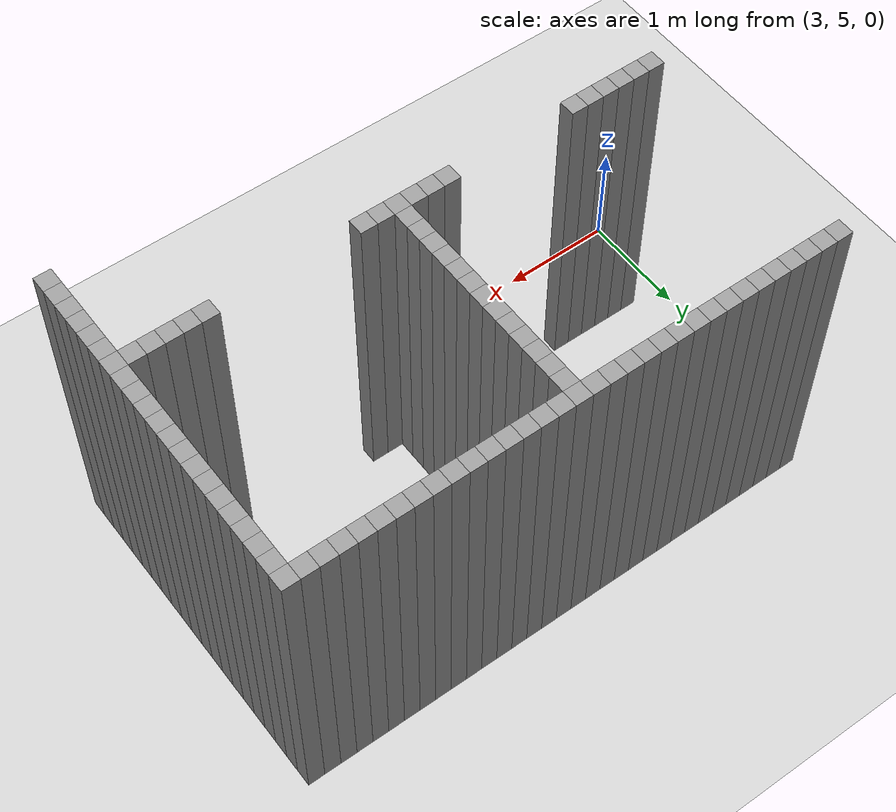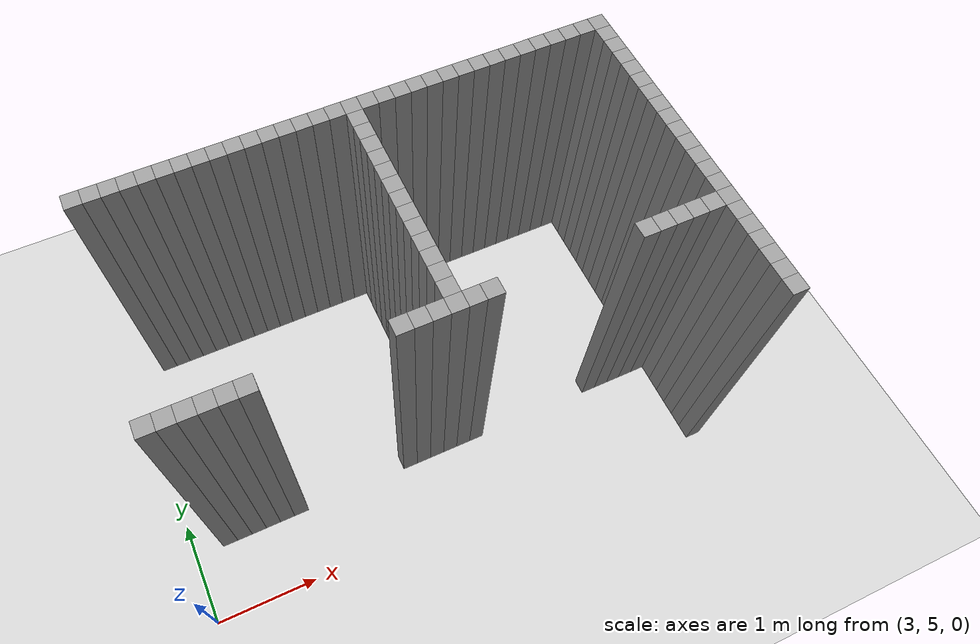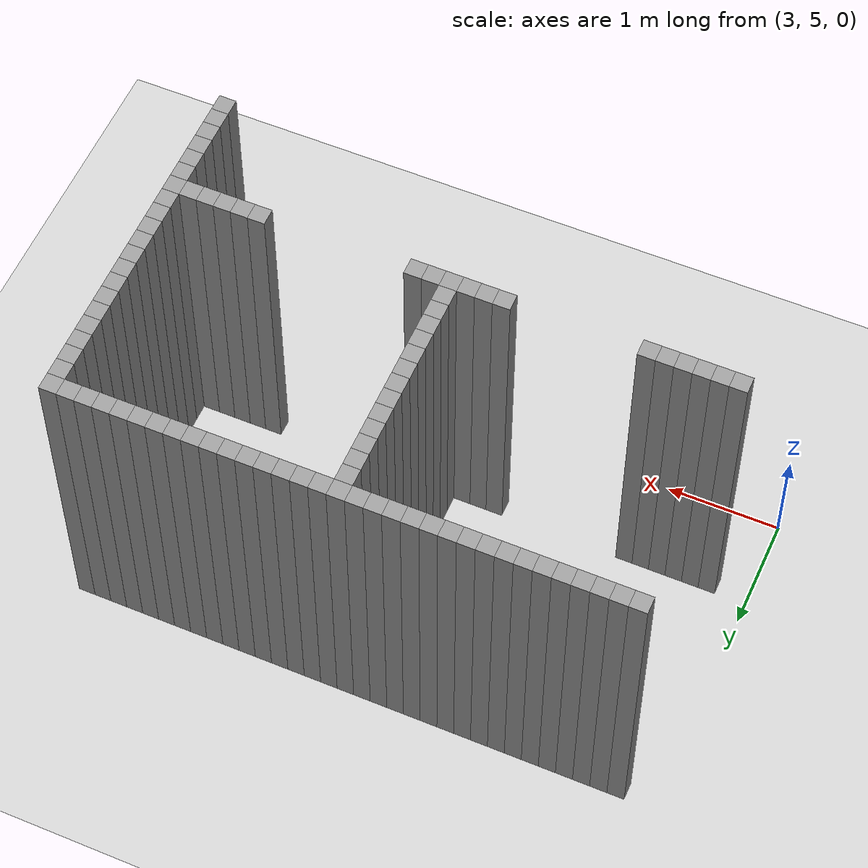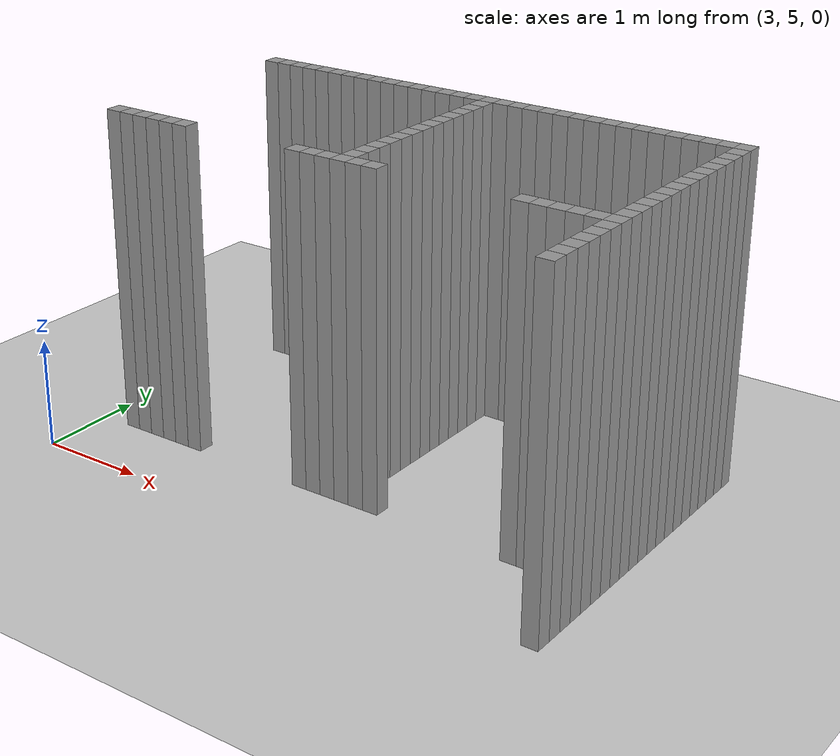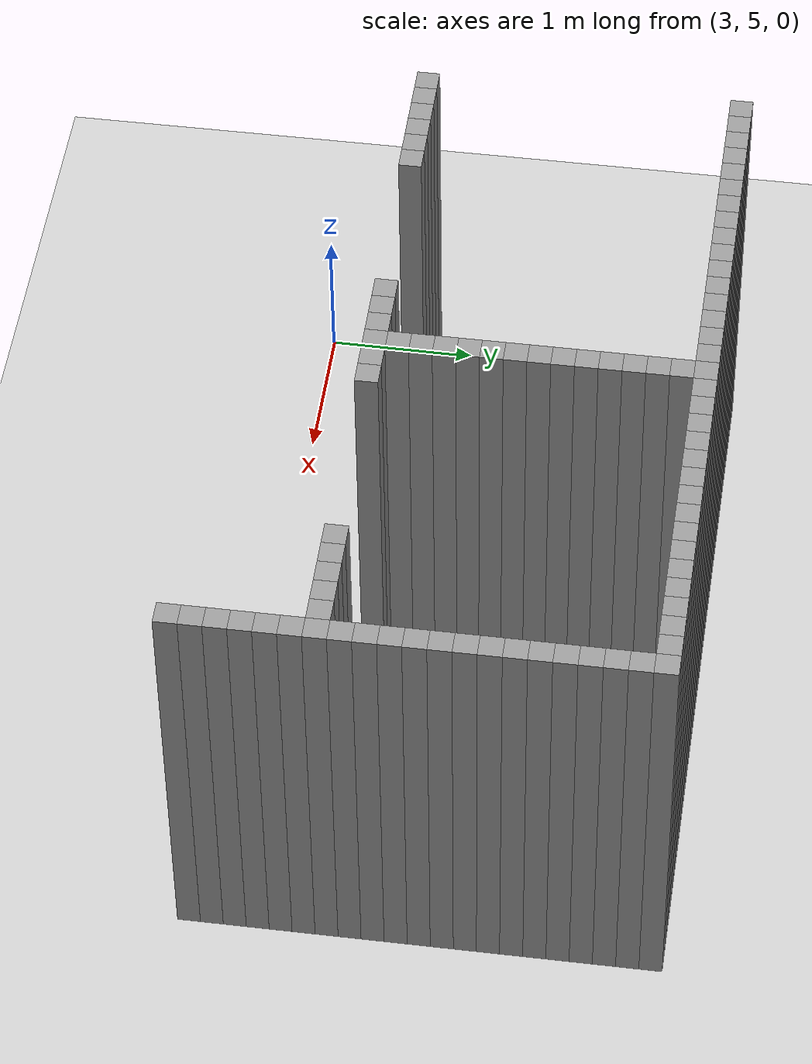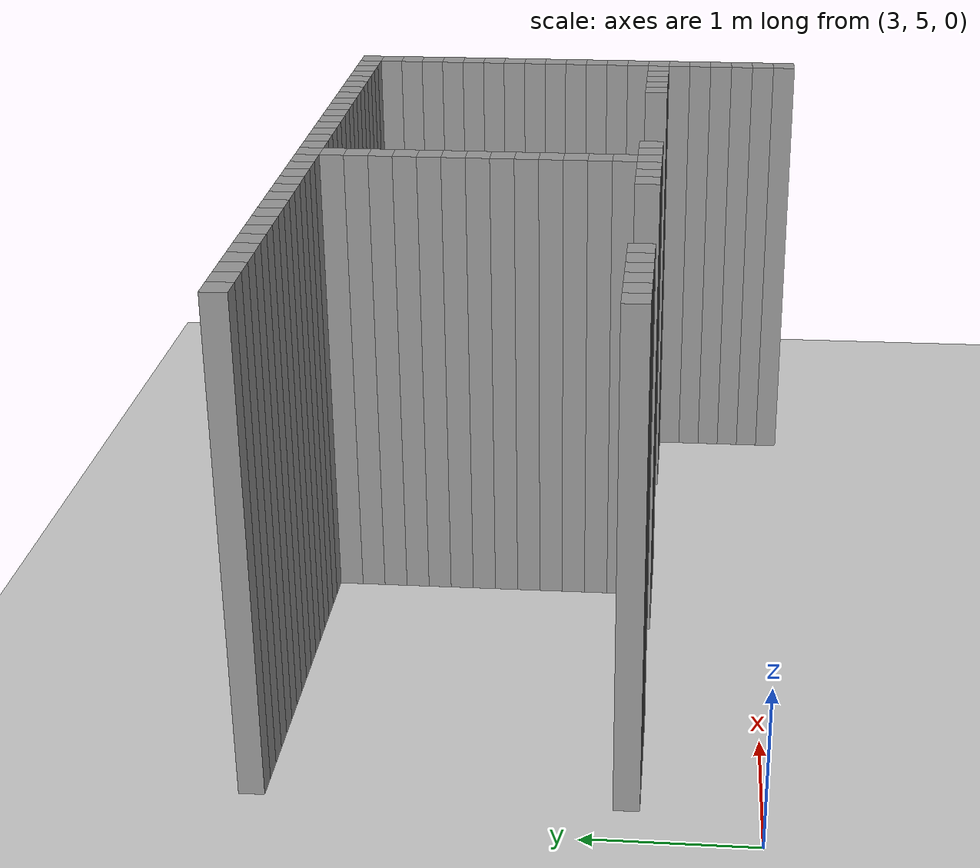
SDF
<sdf version="1.7">
 <world name="default">
  <model name="ground_plane">
   <static>1</static>
   <link name="link">
    <collision name="collision">
     <geometry><plane><normal>0 0 1</normal><size>100 100</size></plane></geometry>
     <surface>
      <contact><collide_bitmask>65535</collide_bitmask></contact>
      <friction><ode><mu>100</mu><mu2>50</mu2></ode></friction>
     </surface>
    </collision>
    <visual name="visual">
     <cast_shadows>0</cast_shadows>
     <geometry><plane><normal>0 0 1</normal><size>100 100</size></plane></geometry>
     <material>
      <script><uri>file://media/materials/scripts/gazebo.material</uri><name>Gazebo/Grey</name></script>
     </material>
    </visual>
   </link>
  </model>
  <model name="image45003">
   <pose>-1 -1 0 0 -0 0</pose>
   <link name="Wall_252">
    <collision name="Wall_252_Collision">
     <geometry><box><size>0.15 0.15 3</size></box></geometry>
     <pose>0 0 1.5 0 -0 0</pose>
    </collision>
    <visual name="Wall_252_Visual">
     <pose>0 0 1.5 0 -0 0</pose>
     <geometry><box><size>0.15 0.15 3</size></box></geometry>
     <material>
      <script><uri>file://media/materials/scripts/gazebo.material</uri><name>Gazebo/Grey</name></script>
      <ambient>1 1 1 1</ambient>
     </material>
     <meta><layer>0</layer></meta>
    </visual>
    <pose>4.35 6.75 0 0 -0 0</pose>
   </link>
   <link name="Wall_253">
    <collision name="Wall_253_Collision">
     <geometry><box><size>0.15 0.15 3</size></box></geometry>
     <pose>0 0 1.5 0 -0 0</pose>
    </collision>
    <visual name="Wall_253_Visual">
     <pose>0 0 1.5 0 -0 0</pose>
     <geometry><box><size>0.15 0.15 3</size></box></geometry>
     <material>
      <script><uri>file://media/materials/scripts/gazebo.material</uri><name>Gazebo/Grey</name></script>
      <ambient>1 1 1 1</ambient>
     </material>
     <meta><layer>0</layer></meta>
    </visual>
    <pose>4.35 8.85 0 0 -0 0</pose>
   </link>
   <link name="Wall_258">
    <collision name="Wall_258_Collision">
     <geometry><box><size>0.15 0.15 3</size></box></geometry>
     <pose>0 0 1.5 0 -0 0</pose>
    </collision>
    <visual name="Wall_258_Visual">
     <pose>0 0 1.5 0 -0 0</pose>
     <geometry><box><size>0.15 0.15 3</size></box></geometry>
     <material>
      <script><uri>file://media/materials/scripts/gazebo.material</uri><name>Gazebo/Grey</name></script>
      <ambient>1 1 1 1</ambient>
     </material>
     <meta><layer>0</layer></meta>
    </visual>
    <pose>4.5 6.75 0 0 -0 0</pose>
   </link>
   <link name="Wall_259">
    <collision name="Wall_259_Collision">
     <geometry><box><size>0.15 0.15 3</size></box></geometry>
     <pose>0 0 1.5 0 -0 0</pose>
    </collision>
    <visual name="Wall_259_Visual">
     <pose>0 0 1.5 0 -0 0</pose>
     <geometry><box><size>0.15 0.15 3</size></box></geometry>
     <material>
      <script><uri>file://media/materials/scripts/gazebo.material</uri><name>Gazebo/Grey</name></script>
      <ambient>1 1 1 1</ambient>
     </material>
     <meta><layer>0</layer></meta>
    </visual>
    <pose>4.5 8.85 0 0 -0 0</pose>
   </link>
   <link name="Wall_264">
    <collision name="Wall_264_Collision">
     <geometry><box><size>0.15 0.15 3</size></box></geometry>
     <pose>0 0 1.5 0 -0 0</pose>
    </collision>
    <visual name="Wall_264_Visual">
     <pose>0 0 1.5 0 -0 0</pose>
     <geometry><box><size>0.15 0.15 3</size></box></geometry>
     <material>
      <script><uri>file://media/materials/scripts/gazebo.material</uri><name>Gazebo/Grey</name></script>
      <ambient>1 1 1 1</ambient>
     </material>
     <meta><layer>0</layer></meta>
    </visual>
    <pose>4.6499999999999995 6.75 0 0 -0 0</pose>
   </link>
   <link name="Wall_265">
    <collision name="Wall_265_Collision">
     <geometry><box><size>0.15 0.15 3</size></box></geometry>
     <pose>0 0 1.5 0 -0 0</pose>
    </collision>
    <visual name="Wall_265_Visual">
     <pose>0 0 1.5 0 -0 0</pose>
     <geometry><box><size>0.15 0.15 3</size></box></geometry>
     <material>
      <script><uri>file://media/materials/scripts/gazebo.material</uri><name>Gazebo/Grey</name></script>
      <ambient>1 1 1 1</ambient>
     </material>
     <meta><layer>0</layer></meta>
    </visual>
    <pose>4.6499999999999995 8.85 0 0 -0 0</pose>
   </link>
   <link name="Wall_269">
    <collision name="Wall_269_Collision">
     <geometry><box><size>0.15 0.15 3</size></box></geometry>
     <pose>0 0 1.5 0 -0 0</pose>
    </collision>
    <visual name="Wall_269_Visual">
     <pose>0 0 1.5 0 -0 0</pose>
     <geometry><box><size>0.15 0.15 3</size></box></geometry>
     <material>
      <script><uri>file://media/materials/scripts/gazebo.material</uri><name>Gazebo/Grey</name></script>
      <ambient>1 1 1 1</ambient>
     </material>
     <meta><layer>0</layer></meta>
    </visual>
    <pose>4.8 6.75 0 0 -0 0</pose>
   </link>
   <link name="Wall_270">
    <collision name="Wall_270_Collision">
     <geometry><box><size>0.15 0.15 3</size></box></geometry>
     <pose>0 0 1.5 0 -0 0</pose>
    </collision>
    <visual name="Wall_270_Visual">
     <pose>0 0 1.5 0 -0 0</pose>
     <geometry><box><size>0.15 0.15 3</size></box></geometry>
     <material>
      <script><uri>file://media/materials/scripts/gazebo.material</uri><name>Gazebo/Grey</name></script>
      <ambient>1 1 1 1</ambient>
     </material>
     <meta><layer>0</layer></meta>
    </visual>
    <pose>4.8 8.85 0 0 -0 0</pose>
   </link>
   <link name="Wall_274">
    <collision name="Wall_274_Collision">
     <geometry><box><size>0.15 0.15 3</size></box></geometry>
     <pose>0 0 1.5 0 -0 0</pose>
    </collision>
    <visual name="Wall_274_Visual">
     <pose>0 0 1.5 0 -0 0</pose>
     <geometry><box><size>0.15 0.15 3</size></box></geometry>
     <material>
      <script><uri>file://media/materials/scripts/gazebo.material</uri><name>Gazebo/Grey</name></script>
      <ambient>1 1 1 1</ambient>
     </material>
     <meta><layer>0</layer></meta>
    </visual>
    <pose>4.95 6.75 0 0 -0 0</pose>
   </link>
   <link name="Wall_275">
    <collision name="Wall_275_Collision">
     <geometry><box><size>0.15 0.15 3</size></box></geometry>
     <pose>0 0 1.5 0 -0 0</pose>
    </collision>
    <visual name="Wall_275_Visual">
     <pose>0 0 1.5 0 -0 0</pose>
     <geometry><box><size>0.15 0.15 3</size></box></geometry>
     <material>
      <script><uri>file://media/materials/scripts/gazebo.material</uri><name>Gazebo/Grey</name></script>
      <ambient>1 1 1 1</ambient>
     </material>
     <meta><layer>0</layer></meta>
    </visual>
    <pose>4.95 8.85 0 0 -0 0</pose>
   </link>
   <link name="Wall_279">
    <collision name="Wall_279_Collision">
     <geometry><box><size>0.15 0.15 3</size></box></geometry>
     <pose>0 0 1.5 0 -0 0</pose>
    </collision>
    <visual name="Wall_279_Visual">
     <pose>0 0 1.5 0 -0 0</pose>
     <geometry><box><size>0.15 0.15 3</size></box></geometry>
     <material>
      <script><uri>file://media/materials/scripts/gazebo.material</uri><name>Gazebo/Grey</name></script>
      <ambient>1 1 1 1</ambient>
     </material>
     <meta><layer>0</layer></meta>
    </visual>
    <pose>5.1 6.75 0 0 -0 0</pose>
   </link>
   <link name="Wall_280">
    <collision name="Wall_280_Collision">
     <geometry><box><size>0.15 0.15 3</size></box></geometry>
     <pose>0 0 1.5 0 -0 0</pose>
    </collision>
    <visual name="Wall_280_Visual">
     <pose>0 0 1.5 0 -0 0</pose>
     <geometry><box><size>0.15 0.15 3</size></box></geometry>
     <material>
      <script><uri>file://media/materials/scripts/gazebo.material</uri><name>Gazebo/Grey</name></script>
      <ambient>1 1 1 1</ambient>
     </material>
     <meta><layer>0</layer></meta>
    </visual>
    <pose>5.1 8.85 0 0 -0 0</pose>
   </link>
   <link name="Wall_283">
    <collision name="Wall_283_Collision">
     <geometry><box><size>0.15 0.15 3</size></box></geometry>
     <pose>0 0 1.5 0 -0 0</pose>
    </collision>
    <visual name="Wall_283_Visual">
     <pose>0 0 1.5 0 -0 0</pose>
     <geometry><box><size>0.15 0.15 3</size></box></geometry>
     <material>
      <script><uri>file://media/materials/scripts/gazebo.material</uri><name>Gazebo/Grey</name></script>
      <ambient>1 1 1 1</ambient>
     </material>
     <meta><layer>0</layer></meta>
    </visual>
    <pose>5.25 8.85 0 0 -0 0</pose>
   </link>
   <link name="Wall_286">
    <collision name="Wall_286_Collision">
     <geometry><box><size>0.15 0.15 3</size></box></geometry>
     <pose>0 0 1.5 0 -0 0</pose>
    </collision>
    <visual name="Wall_286_Visual">
     <pose>0 0 1.5 0 -0 0</pose>
     <geometry><box><size>0.15 0.15 3</size></box></geometry>
     <material>
      <script><uri>file://media/materials/scripts/gazebo.material</uri><name>Gazebo/Grey</name></script>
      <ambient>1 1 1 1</ambient>
     </material>
     <meta><layer>0</layer></meta>
    </visual>
    <pose>5.3999999999999995 8.85 0 0 -0 0</pose>
   </link>
   <link name="Wall_289">
    <collision name="Wall_289_Collision">
     <geometry><box><size>0.15 0.15 3</size></box></geometry>
     <pose>0 0 1.5 0 -0 0</pose>
    </collision>
    <visual name="Wall_289_Visual">
     <pose>0 0 1.5 0 -0 0</pose>
     <geometry><box><size>0.15 0.15 3</size></box></geometry>
     <material>
      <script><uri>file://media/materials/scripts/gazebo.material</uri><name>Gazebo/Grey</name></script>
      <ambient>1 1 1 1</ambient>
     </material>
     <meta><layer>0</layer></meta>
    </visual>
    <pose>5.55 8.85 0 0 -0 0</pose>
   </link>
   <link name="Wall_293">
    <collision name="Wall_293_Collision">
     <geometry><box><size>0.15 0.15 3</size></box></geometry>
     <pose>0 0 1.5 0 -0 0</pose>
    </collision>
    <visual name="Wall_293_Visual">
     <pose>0 0 1.5 0 -0 0</pose>
     <geometry><box><size>0.15 0.15 3</size></box></geometry>
     <material>
      <script><uri>file://media/materials/scripts/gazebo.material</uri><name>Gazebo/Grey</name></script>
      <ambient>1 1 1 1</ambient>
     </material>
     <meta><layer>0</layer></meta>
    </visual>
    <pose>5.7 8.85 0 0 -0 0</pose>
   </link>
   <link name="Wall_297">
    <collision name="Wall_297_Collision">
     <geometry><box><size>0.15 0.15 3</size></box></geometry>
     <pose>0 0 1.5 0 -0 0</pose>
    </collision>
    <visual name="Wall_297_Visual">
     <pose>0 0 1.5 0 -0 0</pose>
     <geometry><box><size>0.15 0.15 3</size></box></geometry>
     <material>
      <script><uri>file://media/materials/scripts/gazebo.material</uri><name>Gazebo/Grey</name></script>
      <ambient>1 1 1 1</ambient>
     </material>
     <meta><layer>0</layer></meta>
    </visual>
    <pose>5.85 8.85 0 0 -0 0</pose>
   </link>
   <link name="Wall_301">
    <collision name="Wall_301_Collision">
     <geometry><box><size>0.15 0.15 3</size></box></geometry>
     <pose>0 0 1.5 0 -0 0</pose>
    </collision>
    <visual name="Wall_301_Visual">
     <pose>0 0 1.5 0 -0 0</pose>
     <geometry><box><size>0.15 0.15 3</size></box></geometry>
     <material>
      <script><uri>file://media/materials/scripts/gazebo.material</uri><name>Gazebo/Grey</name></script>
      <ambient>1 1 1 1</ambient>
     </material>
     <meta><layer>0</layer></meta>
    </visual>
    <pose>6.0 8.85 0 0 -0 0</pose>
   </link>
   <link name="Wall_305">
    <collision name="Wall_305_Collision">
     <geometry><box><size>0.15 0.15 3</size></box></geometry>
     <pose>0 0 1.5 0 -0 0</pose>
    </collision>
    <visual name="Wall_305_Visual">
     <pose>0 0 1.5 0 -0 0</pose>
     <geometry><box><size>0.15 0.15 3</size></box></geometry>
     <material>
      <script><uri>file://media/materials/scripts/gazebo.material</uri><name>Gazebo/Grey</name></script>
      <ambient>1 1 1 1</ambient>
     </material>
     <meta><layer>0</layer></meta>
    </visual>
    <pose>6.1499999999999995 8.85 0 0 -0 0</pose>
   </link>
   <link name="Wall_325">
    <collision name="Wall_325_Collision">
     <geometry><box><size>0.15 0.15 3</size></box></geometry>
     <pose>0 0 1.5 0 -0 0</pose>
    </collision>
    <visual name="Wall_325_Visual">
     <pose>0 0 1.5 0 -0 0</pose>
     <geometry><box><size>0.15 0.15 3</size></box></geometry>
     <material>
      <script><uri>file://media/materials/scripts/gazebo.material</uri><name>Gazebo/Grey</name></script>
      <ambient>1 1 1 1</ambient>
     </material>
     <meta><layer>0</layer></meta>
    </visual>
    <pose>6.3 6.75 0 0 -0 0</pose>
   </link>
   <link name="Wall_326">
    <collision name="Wall_326_Collision">
     <geometry><box><size>0.15 0.15 3</size></box></geometry>
     <pose>0 0 1.5 0 -0 0</pose>
    </collision>
    <visual name="Wall_326_Visual">
     <pose>0 0 1.5 0 -0 0</pose>
     <geometry><box><size>0.15 0.15 3</size></box></geometry>
     <material>
      <script><uri>file://media/materials/scripts/gazebo.material</uri><name>Gazebo/Grey</name></script>
      <ambient>1 1 1 1</ambient>
     </material>
     <meta><layer>0</layer></meta>
    </visual>
    <pose>6.3 8.85 0 0 -0 0</pose>
   </link>
   <link name="Wall_329">
    <collision name="Wall_329_Collision">
     <geometry><box><size>0.15 0.15 3</size></box></geometry>
     <pose>0 0 1.5 0 -0 0</pose>
    </collision>
    <visual name="Wall_329_Visual">
     <pose>0 0 1.5 0 -0 0</pose>
     <geometry><box><size>0.15 0.15 3</size></box></geometry>
     <material>
      <script><uri>file://media/materials/scripts/gazebo.material</uri><name>Gazebo/Grey</name></script>
      <ambient>1 1 1 1</ambient>
     </material>
     <meta><layer>0</layer></meta>
    </visual>
    <pose>6.45 6.75 0 0 -0 0</pose>
   </link>
   <link name="Wall_330">
    <collision name="Wall_330_Collision">
     <geometry><box><size>0.15 0.15 3</size></box></geometry>
     <pose>0 0 1.5 0 -0 0</pose>
    </collision>
    <visual name="Wall_330_Visual">
     <pose>0 0 1.5 0 -0 0</pose>
     <geometry><box><size>0.15 0.15 3</size></box></geometry>
     <material>
      <script><uri>file://media/materials/scripts/gazebo.material</uri><name>Gazebo/Grey</name></script>
      <ambient>1 1 1 1</ambient>
     </material>
     <meta><layer>0</layer></meta>
    </visual>
    <pose>6.45 8.85 0 0 -0 0</pose>
   </link>
   <link name="Wall_333">
    <collision name="Wall_333_Collision">
     <geometry><box><size>0.15 0.15 3</size></box></geometry>
     <pose>0 0 1.5 0 -0 0</pose>
    </collision>
    <visual name="Wall_333_Visual">
     <pose>0 0 1.5 0 -0 0</pose>
     <geometry><box><size>0.15 0.15 3</size></box></geometry>
     <material>
      <script><uri>file://media/materials/scripts/gazebo.material</uri><name>Gazebo/Grey</name></script>
      <ambient>1 1 1 1</ambient>
     </material>
     <meta><layer>0</layer></meta>
    </visual>
    <pose>6.6 6.75 0 0 -0 0</pose>
   </link>
   <link name="Wall_334">
    <collision name="Wall_334_Collision">
     <geometry><box><size>0.15 0.15 3</size></box></geometry>
     <pose>0 0 1.5 0 -0 0</pose>
    </collision>
    <visual name="Wall_334_Visual">
     <pose>0 0 1.5 0 -0 0</pose>
     <geometry><box><size>0.15 0.15 3</size></box></geometry>
     <material>
      <script><uri>file://media/materials/scripts/gazebo.material</uri><name>Gazebo/Grey</name></script>
      <ambient>1 1 1 1</ambient>
     </material>
     <meta><layer>0</layer></meta>
    </visual>
    <pose>6.6 8.85 0 0 -0 0</pose>
   </link>
   <link name="Wall_345">
    <collision name="Wall_345_Collision">
     <geometry><box><size>0.15 0.15 3</size></box></geometry>
     <pose>0 0 1.5 0 -0 0</pose>
    </collision>
    <visual name="Wall_345_Visual">
     <pose>0 0 1.5 0 -0 0</pose>
     <geometry><box><size>0.15 0.15 3</size></box></geometry>
     <material>
      <script><uri>file://media/materials/scripts/gazebo.material</uri><name>Gazebo/Grey</name></script>
      <ambient>1 1 1 1</ambient>
     </material>
     <meta><layer>0</layer></meta>
    </visual>
    <pose>6.75 6.75 0 0 -0 0</pose>
   </link>
   <link name="Wall_346">
    <collision name="Wall_346_Collision">
     <geometry><box><size>0.15 0.15 3</size></box></geometry>
     <pose>0 0 1.5 0 -0 0</pose>
    </collision>
    <visual name="Wall_346_Visual">
     <pose>0 0 1.5 0 -0 0</pose>
     <geometry><box><size>0.15 0.15 3</size></box></geometry>
     <material>
      <script><uri>file://media/materials/scripts/gazebo.material</uri><name>Gazebo/Grey</name></script>
      <ambient>1 1 1 1</ambient>
     </material>
     <meta><layer>0</layer></meta>
    </visual>
    <pose>6.75 6.8999999999999995 0 0 -0 0</pose>
   </link>
   <link name="Wall_347">
    <collision name="Wall_347_Collision">
     <geometry><box><size>0.15 0.15 3</size></box></geometry>
     <pose>0 0 1.5 0 -0 0</pose>
    </collision>
    <visual name="Wall_347_Visual">
     <pose>0 0 1.5 0 -0 0</pose>
     <geometry><box><size>0.15 0.15 3</size></box></geometry>
     <material>
      <script><uri>file://media/materials/scripts/gazebo.material</uri><name>Gazebo/Grey</name></script>
      <ambient>1 1 1 1</ambient>
     </material>
     <meta><layer>0</layer></meta>
    </visual>
    <pose>6.75 7.05 0 0 -0 0</pose>
   </link>
   <link name="Wall_348">
    <collision name="Wall_348_Collision">
     <geometry><box><size>0.15 0.15 3</size></box></geometry>
     <pose>0 0 1.5 0 -0 0</pose>
    </collision>
    <visual name="Wall_348_Visual">
     <pose>0 0 1.5 0 -0 0</pose>
     <geometry><box><size>0.15 0.15 3</size></box></geometry>
     <material>
      <script><uri>file://media/materials/scripts/gazebo.material</uri><name>Gazebo/Grey</name></script>
      <ambient>1 1 1 1</ambient>
     </material>
     <meta><layer>0</layer></meta>
    </visual>
    <pose>6.75 7.199999999999999 0 0 -0 0</pose>
   </link>
   <link name="Wall_349">
    <collision name="Wall_349_Collision">
     <geometry><box><size>0.15 0.15 3</size></box></geometry>
     <pose>0 0 1.5 0 -0 0</pose>
    </collision>
    <visual name="Wall_349_Visual">
     <pose>0 0 1.5 0 -0 0</pose>
     <geometry><box><size>0.15 0.15 3</size></box></geometry>
     <material>
      <script><uri>file://media/materials/scripts/gazebo.material</uri><name>Gazebo/Grey</name></script>
      <ambient>1 1 1 1</ambient>
     </material>
     <meta><layer>0</layer></meta>
    </visual>
    <pose>6.75 7.35 0 0 -0 0</pose>
   </link>
   <link name="Wall_350">
    <collision name="Wall_350_Collision">
     <geometry><box><size>0.15 0.15 3</size></box></geometry>
     <pose>0 0 1.5 0 -0 0</pose>
    </collision>
    <visual name="Wall_350_Visual">
     <pose>0 0 1.5 0 -0 0</pose>
     <geometry><box><size>0.15 0.15 3</size></box></geometry>
     <material>
      <script><uri>file://media/materials/scripts/gazebo.material</uri><name>Gazebo/Grey</name></script>
      <ambient>1 1 1 1</ambient>
     </material>
     <meta><layer>0</layer></meta>
    </visual>
    <pose>6.75 7.5 0 0 -0 0</pose>
   </link>
   <link name="Wall_351">
    <collision name="Wall_351_Collision">
     <geometry><box><size>0.15 0.15 3</size></box></geometry>
     <pose>0 0 1.5 0 -0 0</pose>
    </collision>
    <visual name="Wall_351_Visual">
     <pose>0 0 1.5 0 -0 0</pose>
     <geometry><box><size>0.15 0.15 3</size></box></geometry>
     <material>
      <script><uri>file://media/materials/scripts/gazebo.material</uri><name>Gazebo/Grey</name></script>
      <ambient>1 1 1 1</ambient>
     </material>
     <meta><layer>0</layer></meta>
    </visual>
    <pose>6.75 7.6499999999999995 0 0 -0 0</pose>
   </link>
   <link name="Wall_352">
    <collision name="Wall_352_Collision">
     <geometry><box><size>0.15 0.15 3</size></box></geometry>
     <pose>0 0 1.5 0 -0 0</pose>
    </collision>
    <visual name="Wall_352_Visual">
     <pose>0 0 1.5 0 -0 0</pose>
     <geometry><box><size>0.15 0.15 3</size></box></geometry>
     <material>
      <script><uri>file://media/materials/scripts/gazebo.material</uri><name>Gazebo/Grey</name></script>
      <ambient>1 1 1 1</ambient>
     </material>
     <meta><layer>0</layer></meta>
    </visual>
    <pose>6.75 7.8 0 0 -0 0</pose>
   </link>
   <link name="Wall_353">
    <collision name="Wall_353_Collision">
     <geometry><box><size>0.15 0.15 3</size></box></geometry>
     <pose>0 0 1.5 0 -0 0</pose>
    </collision>
    <visual name="Wall_353_Visual">
     <pose>0 0 1.5 0 -0 0</pose>
     <geometry><box><size>0.15 0.15 3</size></box></geometry>
     <material>
      <script><uri>file://media/materials/scripts/gazebo.material</uri><name>Gazebo/Grey</name></script>
      <ambient>1 1 1 1</ambient>
     </material>
     <meta><layer>0</layer></meta>
    </visual>
    <pose>6.75 7.949999999999999 0 0 -0 0</pose>
   </link>
   <link name="Wall_354">
    <collision name="Wall_354_Collision">
     <geometry><box><size>0.15 0.15 3</size></box></geometry>
     <pose>0 0 1.5 0 -0 0</pose>
    </collision>
    <visual name="Wall_354_Visual">
     <pose>0 0 1.5 0 -0 0</pose>
     <geometry><box><size>0.15 0.15 3</size></box></geometry>
     <material>
      <script><uri>file://media/materials/scripts/gazebo.material</uri><name>Gazebo/Grey</name></script>
      <ambient>1 1 1 1</ambient>
     </material>
     <meta><layer>0</layer></meta>
    </visual>
    <pose>6.75 8.1 0 0 -0 0</pose>
   </link>
   <link name="Wall_355">
    <collision name="Wall_355_Collision">
     <geometry><box><size>0.15 0.15 3</size></box></geometry>
     <pose>0 0 1.5 0 -0 0</pose>
    </collision>
    <visual name="Wall_355_Visual">
     <pose>0 0 1.5 0 -0 0</pose>
     <geometry><box><size>0.15 0.15 3</size></box></geometry>
     <material>
      <script><uri>file://media/materials/scripts/gazebo.material</uri><name>Gazebo/Grey</name></script>
      <ambient>1 1 1 1</ambient>
     </material>
     <meta><layer>0</layer></meta>
    </visual>
    <pose>6.75 8.25 0 0 -0 0</pose>
   </link>
   <link name="Wall_356">
    <collision name="Wall_356_Collision">
     <geometry><box><size>0.15 0.15 3</size></box></geometry>
     <pose>0 0 1.5 0 -0 0</pose>
    </collision>
    <visual name="Wall_356_Visual">
     <pose>0 0 1.5 0 -0 0</pose>
     <geometry><box><size>0.15 0.15 3</size></box></geometry>
     <material>
      <script><uri>file://media/materials/scripts/gazebo.material</uri><name>Gazebo/Grey</name></script>
      <ambient>1 1 1 1</ambient>
     </material>
     <meta><layer>0</layer></meta>
    </visual>
    <pose>6.75 8.4 0 0 -0 0</pose>
   </link>
   <link name="Wall_357">
    <collision name="Wall_357_Collision">
     <geometry><box><size>0.15 0.15 3</size></box></geometry>
     <pose>0 0 1.5 0 -0 0</pose>
    </collision>
    <visual name="Wall_357_Visual">
     <pose>0 0 1.5 0 -0 0</pose>
     <geometry><box><size>0.15 0.15 3</size></box></geometry>
     <material>
      <script><uri>file://media/materials/scripts/gazebo.material</uri><name>Gazebo/Grey</name></script>
      <ambient>1 1 1 1</ambient>
     </material>
     <meta><layer>0</layer></meta>
    </visual>
    <pose>6.75 8.549999999999999 0 0 -0 0</pose>
   </link>
   <link name="Wall_358">
    <collision name="Wall_358_Collision">
     <geometry><box><size>0.15 0.15 3</size></box></geometry>
     <pose>0 0 1.5 0 -0 0</pose>
    </collision>
    <visual name="Wall_358_Visual">
     <pose>0 0 1.5 0 -0 0</pose>
     <geometry><box><size>0.15 0.15 3</size></box></geometry>
     <material>
      <script><uri>file://media/materials/scripts/gazebo.material</uri><name>Gazebo/Grey</name></script>
      <ambient>1 1 1 1</ambient>
     </material>
     <meta><layer>0</layer></meta>
    </visual>
    <pose>6.75 8.7 0 0 -0 0</pose>
   </link>
   <link name="Wall_359">
    <collision name="Wall_359_Collision">
     <geometry><box><size>0.15 0.15 3</size></box></geometry>
     <pose>0 0 1.5 0 -0 0</pose>
    </collision>
    <visual name="Wall_359_Visual">
     <pose>0 0 1.5 0 -0 0</pose>
     <geometry><box><size>0.15 0.15 3</size></box></geometry>
     <material>
      <script><uri>file://media/materials/scripts/gazebo.material</uri><name>Gazebo/Grey</name></script>
      <ambient>1 1 1 1</ambient>
     </material>
     <meta><layer>0</layer></meta>
    </visual>
    <pose>6.75 8.85 0 0 -0 0</pose>
   </link>
   <link name="Wall_362">
    <collision name="Wall_362_Collision">
     <geometry><box><size>0.15 0.15 3</size></box></geometry>
     <pose>0 0 1.5 0 -0 0</pose>
    </collision>
    <visual name="Wall_362_Visual">
     <pose>0 0 1.5 0 -0 0</pose>
     <geometry><box><size>0.15 0.15 3</size></box></geometry>
     <material>
      <script><uri>file://media/materials/scripts/gazebo.material</uri><name>Gazebo/Grey</name></script>
      <ambient>1 1 1 1</ambient>
     </material>
     <meta><layer>0</layer></meta>
    </visual>
    <pose>6.8999999999999995 6.75 0 0 -0 0</pose>
   </link>
   <link name="Wall_363">
    <collision name="Wall_363_Collision">
     <geometry><box><size>0.15 0.15 3</size></box></geometry>
     <pose>0 0 1.5 0 -0 0</pose>
    </collision>
    <visual name="Wall_363_Visual">
     <pose>0 0 1.5 0 -0 0</pose>
     <geometry><box><size>0.15 0.15 3</size></box></geometry>
     <material>
      <script><uri>file://media/materials/scripts/gazebo.material</uri><name>Gazebo/Grey</name></script>
      <ambient>1 1 1 1</ambient>
     </material>
     <meta><layer>0</layer></meta>
    </visual>
    <pose>6.8999999999999995 8.85 0 0 -0 0</pose>
   </link>
   <link name="Wall_366">
    <collision name="Wall_366_Collision">
     <geometry><box><size>0.15 0.15 3</size></box></geometry>
     <pose>0 0 1.5 0 -0 0</pose>
    </collision>
    <visual name="Wall_366_Visual">
     <pose>0 0 1.5 0 -0 0</pose>
     <geometry><box><size>0.15 0.15 3</size></box></geometry>
     <material>
      <script><uri>file://media/materials/scripts/gazebo.material</uri><name>Gazebo/Grey</name></script>
      <ambient>1 1 1 1</ambient>
     </material>
     <meta><layer>0</layer></meta>
    </visual>
    <pose>7.05 6.75 0 0 -0 0</pose>
   </link>
   <link name="Wall_367">
    <collision name="Wall_367_Collision">
     <geometry><box><size>0.15 0.15 3</size></box></geometry>
     <pose>0 0 1.5 0 -0 0</pose>
    </collision>
    <visual name="Wall_367_Visual">
     <pose>0 0 1.5 0 -0 0</pose>
     <geometry><box><size>0.15 0.15 3</size></box></geometry>
     <material>
      <script><uri>file://media/materials/scripts/gazebo.material</uri><name>Gazebo/Grey</name></script>
      <ambient>1 1 1 1</ambient>
     </material>
     <meta><layer>0</layer></meta>
    </visual>
    <pose>7.05 8.85 0 0 -0 0</pose>
   </link>
   <link name="Wall_370">
    <collision name="Wall_370_Collision">
     <geometry><box><size>0.15 0.15 3</size></box></geometry>
     <pose>0 0 1.5 0 -0 0</pose>
    </collision>
    <visual name="Wall_370_Visual">
     <pose>0 0 1.5 0 -0 0</pose>
     <geometry><box><size>0.15 0.15 3</size></box></geometry>
     <material>
      <script><uri>file://media/materials/scripts/gazebo.material</uri><name>Gazebo/Grey</name></script>
      <ambient>1 1 1 1</ambient>
     </material>
     <meta><layer>0</layer></meta>
    </visual>
    <pose>7.199999999999999 8.85 0 0 -0 0</pose>
   </link>
   <link name="Wall_373">
    <collision name="Wall_373_Collision">
     <geometry><box><size>0.15 0.15 3</size></box></geometry>
     <pose>0 0 1.5 0 -0 0</pose>
    </collision>
    <visual name="Wall_373_Visual">
     <pose>0 0 1.5 0 -0 0</pose>
     <geometry><box><size>0.15 0.15 3</size></box></geometry>
     <material>
      <script><uri>file://media/materials/scripts/gazebo.material</uri><name>Gazebo/Grey</name></script>
      <ambient>1 1 1 1</ambient>
     </material>
     <meta><layer>0</layer></meta>
    </visual>
    <pose>7.35 8.85 0 0 -0 0</pose>
   </link>
   <link name="Wall_387">
    <collision name="Wall_387_Collision">
     <geometry><box><size>0.15 0.15 3</size></box></geometry>
     <pose>0 0 1.5 0 -0 0</pose>
    </collision>
    <visual name="Wall_387_Visual">
     <pose>0 0 1.5 0 -0 0</pose>
     <geometry><box><size>0.15 0.15 3</size></box></geometry>
     <material>
      <script><uri>file://media/materials/scripts/gazebo.material</uri><name>Gazebo/Grey</name></script>
      <ambient>1 1 1 1</ambient>
     </material>
     <meta><layer>0</layer></meta>
    </visual>
    <pose>7.5 8.85 0 0 -0 0</pose>
   </link>
   <link name="Wall_391">
    <collision name="Wall_391_Collision">
     <geometry><box><size>0.15 0.15 3</size></box></geometry>
     <pose>0 0 1.5 0 -0 0</pose>
    </collision>
    <visual name="Wall_391_Visual">
     <pose>0 0 1.5 0 -0 0</pose>
     <geometry><box><size>0.15 0.15 3</size></box></geometry>
     <material>
      <script><uri>file://media/materials/scripts/gazebo.material</uri><name>Gazebo/Grey</name></script>
      <ambient>1 1 1 1</ambient>
     </material>
     <meta><layer>0</layer></meta>
    </visual>
    <pose>7.6499999999999995 8.85 0 0 -0 0</pose>
   </link>
   <link name="Wall_395">
    <collision name="Wall_395_Collision">
     <geometry><box><size>0.15 0.15 3</size></box></geometry>
     <pose>0 0 1.5 0 -0 0</pose>
    </collision>
    <visual name="Wall_395_Visual">
     <pose>0 0 1.5 0 -0 0</pose>
     <geometry><box><size>0.15 0.15 3</size></box></geometry>
     <material>
      <script><uri>file://media/materials/scripts/gazebo.material</uri><name>Gazebo/Grey</name></script>
      <ambient>1 1 1 1</ambient>
     </material>
     <meta><layer>0</layer></meta>
    </visual>
    <pose>7.8 8.85 0 0 -0 0</pose>
   </link>
   <link name="Wall_399">
    <collision name="Wall_399_Collision">
     <geometry><box><size>0.15 0.15 3</size></box></geometry>
     <pose>0 0 1.5 0 -0 0</pose>
    </collision>
    <visual name="Wall_399_Visual">
     <pose>0 0 1.5 0 -0 0</pose>
     <geometry><box><size>0.15 0.15 3</size></box></geometry>
     <material>
      <script><uri>file://media/materials/scripts/gazebo.material</uri><name>Gazebo/Grey</name></script>
      <ambient>1 1 1 1</ambient>
     </material>
     <meta><layer>0</layer></meta>
    </visual>
    <pose>7.949999999999999 8.85 0 0 -0 0</pose>
   </link>
   <link name="Wall_403">
    <collision name="Wall_403_Collision">
     <geometry><box><size>0.15 0.15 3</size></box></geometry>
     <pose>0 0 1.5 0 -0 0</pose>
    </collision>
    <visual name="Wall_403_Visual">
     <pose>0 0 1.5 0 -0 0</pose>
     <geometry><box><size>0.15 0.15 3</size></box></geometry>
     <material>
      <script><uri>file://media/materials/scripts/gazebo.material</uri><name>Gazebo/Grey</name></script>
      <ambient>1 1 1 1</ambient>
     </material>
     <meta><layer>0</layer></meta>
    </visual>
    <pose>8.1 8.85 0 0 -0 0</pose>
   </link>
   <link name="Wall_407">
    <collision name="Wall_407_Collision">
     <geometry><box><size>0.15 0.15 3</size></box></geometry>
     <pose>0 0 1.5 0 -0 0</pose>
    </collision>
    <visual name="Wall_407_Visual">
     <pose>0 0 1.5 0 -0 0</pose>
     <geometry><box><size>0.15 0.15 3</size></box></geometry>
     <material>
      <script><uri>file://media/materials/scripts/gazebo.material</uri><name>Gazebo/Grey</name></script>
      <ambient>1 1 1 1</ambient>
     </material>
     <meta><layer>0</layer></meta>
    </visual>
    <pose>8.25 8.85 0 0 -0 0</pose>
   </link>
   <link name="Wall_411">
    <collision name="Wall_411_Collision">
     <geometry><box><size>0.15 0.15 3</size></box></geometry>
     <pose>0 0 1.5 0 -0 0</pose>
    </collision>
    <visual name="Wall_411_Visual">
     <pose>0 0 1.5 0 -0 0</pose>
     <geometry><box><size>0.15 0.15 3</size></box></geometry>
     <material>
      <script><uri>file://media/materials/scripts/gazebo.material</uri><name>Gazebo/Grey</name></script>
      <ambient>1 1 1 1</ambient>
     </material>
     <meta><layer>0</layer></meta>
    </visual>
    <pose>8.4 6.75 0 0 -0 0</pose>
   </link>
   <link name="Wall_412">
    <collision name="Wall_412_Collision">
     <geometry><box><size>0.15 0.15 3</size></box></geometry>
     <pose>0 0 1.5 0 -0 0</pose>
    </collision>
    <visual name="Wall_412_Visual">
     <pose>0 0 1.5 0 -0 0</pose>
     <geometry><box><size>0.15 0.15 3</size></box></geometry>
     <material>
      <script><uri>file://media/materials/scripts/gazebo.material</uri><name>Gazebo/Grey</name></script>
      <ambient>1 1 1 1</ambient>
     </material>
     <meta><layer>0</layer></meta>
    </visual>
    <pose>8.4 8.85 0 0 -0 0</pose>
   </link>
   <link name="Wall_417">
    <collision name="Wall_417_Collision">
     <geometry><box><size>0.15 0.15 3</size></box></geometry>
     <pose>0 0 1.5 0 -0 0</pose>
    </collision>
    <visual name="Wall_417_Visual">
     <pose>0 0 1.5 0 -0 0</pose>
     <geometry><box><size>0.15 0.15 3</size></box></geometry>
     <material>
      <script><uri>file://media/materials/scripts/gazebo.material</uri><name>Gazebo/Grey</name></script>
      <ambient>1 1 1 1</ambient>
     </material>
     <meta><layer>0</layer></meta>
    </visual>
    <pose>8.549999999999999 6.75 0 0 -0 0</pose>
   </link>
   <link name="Wall_418">
    <collision name="Wall_418_Collision">
     <geometry><box><size>0.15 0.15 3</size></box></geometry>
     <pose>0 0 1.5 0 -0 0</pose>
    </collision>
    <visual name="Wall_418_Visual">
     <pose>0 0 1.5 0 -0 0</pose>
     <geometry><box><size>0.15 0.15 3</size></box></geometry>
     <material>
      <script><uri>file://media/materials/scripts/gazebo.material</uri><name>Gazebo/Grey</name></script>
      <ambient>1 1 1 1</ambient>
     </material>
     <meta><layer>0</layer></meta>
    </visual>
    <pose>8.549999999999999 8.85 0 0 -0 0</pose>
   </link>
   <link name="Wall_423">
    <collision name="Wall_423_Collision">
     <geometry><box><size>0.15 0.15 3</size></box></geometry>
     <pose>0 0 1.5 0 -0 0</pose>
    </collision>
    <visual name="Wall_423_Visual">
     <pose>0 0 1.5 0 -0 0</pose>
     <geometry><box><size>0.15 0.15 3</size></box></geometry>
     <material>
      <script><uri>file://media/materials/scripts/gazebo.material</uri><name>Gazebo/Grey</name></script>
      <ambient>1 1 1 1</ambient>
     </material>
     <meta><layer>0</layer></meta>
    </visual>
    <pose>8.7 6.75 0 0 -0 0</pose>
   </link>
   <link name="Wall_424">
    <collision name="Wall_424_Collision">
     <geometry><box><size>0.15 0.15 3</size></box></geometry>
     <pose>0 0 1.5 0 -0 0</pose>
    </collision>
    <visual name="Wall_424_Visual">
     <pose>0 0 1.5 0 -0 0</pose>
     <geometry><box><size>0.15 0.15 3</size></box></geometry>
     <material>
      <script><uri>file://media/materials/scripts/gazebo.material</uri><name>Gazebo/Grey</name></script>
      <ambient>1 1 1 1</ambient>
     </material>
     <meta><layer>0</layer></meta>
    </visual>
    <pose>8.7 8.85 0 0 -0 0</pose>
   </link>
   <link name="Wall_429">
    <collision name="Wall_429_Collision">
     <geometry><box><size>0.15 0.15 3</size></box></geometry>
     <pose>0 0 1.5 0 -0 0</pose>
    </collision>
    <visual name="Wall_429_Visual">
     <pose>0 0 1.5 0 -0 0</pose>
     <geometry><box><size>0.15 0.15 3</size></box></geometry>
     <material>
      <script><uri>file://media/materials/scripts/gazebo.material</uri><name>Gazebo/Grey</name></script>
      <ambient>1 1 1 1</ambient>
     </material>
     <meta><layer>0</layer></meta>
    </visual>
    <pose>8.85 6.75 0 0 -0 0</pose>
   </link>
   <link name="Wall_430">
    <collision name="Wall_430_Collision">
     <geometry><box><size>0.15 0.15 3</size></box></geometry>
     <pose>0 0 1.5 0 -0 0</pose>
    </collision>
    <visual name="Wall_430_Visual">
     <pose>0 0 1.5 0 -0 0</pose>
     <geometry><box><size>0.15 0.15 3</size></box></geometry>
     <material>
      <script><uri>file://media/materials/scripts/gazebo.material</uri><name>Gazebo/Grey</name></script>
      <ambient>1 1 1 1</ambient>
     </material>
     <meta><layer>0</layer></meta>
    </visual>
    <pose>8.85 8.85 0 0 -0 0</pose>
   </link>
   <link name="Wall_435">
    <collision name="Wall_435_Collision">
     <geometry><box><size>0.15 0.15 3</size></box></geometry>
     <pose>0 0 1.5 0 -0 0</pose>
    </collision>
    <visual name="Wall_435_Visual">
     <pose>0 0 1.5 0 -0 0</pose>
     <geometry><box><size>0.15 0.15 3</size></box></geometry>
     <material>
      <script><uri>file://media/materials/scripts/gazebo.material</uri><name>Gazebo/Grey</name></script>
      <ambient>1 1 1 1</ambient>
     </material>
     <meta><layer>0</layer></meta>
    </visual>
    <pose>9.0 6.75 0 0 -0 0</pose>
   </link>
   <link name="Wall_436">
    <collision name="Wall_436_Collision">
     <geometry><box><size>0.15 0.15 3</size></box></geometry>
     <pose>0 0 1.5 0 -0 0</pose>
    </collision>
    <visual name="Wall_436_Visual">
     <pose>0 0 1.5 0 -0 0</pose>
     <geometry><box><size>0.15 0.15 3</size></box></geometry>
     <material>
      <script><uri>file://media/materials/scripts/gazebo.material</uri><name>Gazebo/Grey</name></script>
      <ambient>1 1 1 1</ambient>
     </material>
     <meta><layer>0</layer></meta>
    </visual>
    <pose>9.0 8.85 0 0 -0 0</pose>
   </link>
   <link name="Wall_476">
    <collision name="Wall_476_Collision">
     <geometry><box><size>0.15 0.15 3</size></box></geometry>
     <pose>0 0 1.5 0 -0 0</pose>
    </collision>
    <visual name="Wall_476_Visual">
     <pose>0 0 1.5 0 -0 0</pose>
     <geometry><box><size>0.15 0.15 3</size></box></geometry>
     <material>
      <script><uri>file://media/materials/scripts/gazebo.material</uri><name>Gazebo/Grey</name></script>
      <ambient>1 1 1 1</ambient>
     </material>
     <meta><layer>0</layer></meta>
    </visual>
    <pose>9.15 5.85 0 0 -0 0</pose>
   </link>
   <link name="Wall_477">
    <collision name="Wall_477_Collision">
     <geometry><box><size>0.15 0.15 3</size></box></geometry>
     <pose>0 0 1.5 0 -0 0</pose>
    </collision>
    <visual name="Wall_477_Visual">
     <pose>0 0 1.5 0 -0 0</pose>
     <geometry><box><size>0.15 0.15 3</size></box></geometry>
     <material>
      <script><uri>file://media/materials/scripts/gazebo.material</uri><name>Gazebo/Grey</name></script>
      <ambient>1 1 1 1</ambient>
     </material>
     <meta><layer>0</layer></meta>
    </visual>
    <pose>9.15 6.0 0 0 -0 0</pose>
   </link>
   <link name="Wall_478">
    <collision name="Wall_478_Collision">
     <geometry><box><size>0.15 0.15 3</size></box></geometry>
     <pose>0 0 1.5 0 -0 0</pose>
    </collision>
    <visual name="Wall_478_Visual">
     <pose>0 0 1.5 0 -0 0</pose>
     <geometry><box><size>0.15 0.15 3</size></box></geometry>
     <material>
      <script><uri>file://media/materials/scripts/gazebo.material</uri><name>Gazebo/Grey</name></script>
      <ambient>1 1 1 1</ambient>
     </material>
     <meta><layer>0</layer></meta>
    </visual>
    <pose>9.15 6.1499999999999995 0 0 -0 0</pose>
   </link>
   <link name="Wall_479">
    <collision name="Wall_479_Collision">
     <geometry><box><size>0.15 0.15 3</size></box></geometry>
     <pose>0 0 1.5 0 -0 0</pose>
    </collision>
    <visual name="Wall_479_Visual">
     <pose>0 0 1.5 0 -0 0</pose>
     <geometry><box><size>0.15 0.15 3</size></box></geometry>
     <material>
      <script><uri>file://media/materials/scripts/gazebo.material</uri><name>Gazebo/Grey</name></script>
      <ambient>1 1 1 1</ambient>
     </material>
     <meta><layer>0</layer></meta>
    </visual>
    <pose>9.15 6.3 0 0 -0 0</pose>
   </link>
   <link name="Wall_480">
    <collision name="Wall_480_Collision">
     <geometry><box><size>0.15 0.15 3</size></box></geometry>
     <pose>0 0 1.5 0 -0 0</pose>
    </collision>
    <visual name="Wall_480_Visual">
     <pose>0 0 1.5 0 -0 0</pose>
     <geometry><box><size>0.15 0.15 3</size></box></geometry>
     <material>
      <script><uri>file://media/materials/scripts/gazebo.material</uri><name>Gazebo/Grey</name></script>
      <ambient>1 1 1 1</ambient>
     </material>
     <meta><layer>0</layer></meta>
    </visual>
    <pose>9.15 6.45 0 0 -0 0</pose>
   </link>
   <link name="Wall_481">
    <collision name="Wall_481_Collision">
     <geometry><box><size>0.15 0.15 3</size></box></geometry>
     <pose>0 0 1.5 0 -0 0</pose>
    </collision>
    <visual name="Wall_481_Visual">
     <pose>0 0 1.5 0 -0 0</pose>
     <geometry><box><size>0.15 0.15 3</size></box></geometry>
     <material>
      <script><uri>file://media/materials/scripts/gazebo.material</uri><name>Gazebo/Grey</name></script>
      <ambient>1 1 1 1</ambient>
     </material>
     <meta><layer>0</layer></meta>
    </visual>
    <pose>9.15 6.6 0 0 -0 0</pose>
   </link>
   <link name="Wall_482">
    <collision name="Wall_482_Collision">
     <geometry><box><size>0.15 0.15 3</size></box></geometry>
     <pose>0 0 1.5 0 -0 0</pose>
    </collision>
    <visual name="Wall_482_Visual">
     <pose>0 0 1.5 0 -0 0</pose>
     <geometry><box><size>0.15 0.15 3</size></box></geometry>
     <material>
      <script><uri>file://media/materials/scripts/gazebo.material</uri><name>Gazebo/Grey</name></script>
      <ambient>1 1 1 1</ambient>
     </material>
     <meta><layer>0</layer></meta>
    </visual>
    <pose>9.15 6.75 0 0 -0 0</pose>
   </link>
   <link name="Wall_483">
    <collision name="Wall_483_Collision">
     <geometry><box><size>0.15 0.15 3</size></box></geometry>
     <pose>0 0 1.5 0 -0 0</pose>
    </collision>
    <visual name="Wall_483_Visual">
     <pose>0 0 1.5 0 -0 0</pose>
     <geometry><box><size>0.15 0.15 3</size></box></geometry>
     <material>
      <script><uri>file://media/materials/scripts/gazebo.material</uri><name>Gazebo/Grey</name></script>
      <ambient>1 1 1 1</ambient>
     </material>
     <meta><layer>0</layer></meta>
    </visual>
    <pose>9.15 6.8999999999999995 0 0 -0 0</pose>
   </link>
   <link name="Wall_484">
    <collision name="Wall_484_Collision">
     <geometry><box><size>0.15 0.15 3</size></box></geometry>
     <pose>0 0 1.5 0 -0 0</pose>
    </collision>
    <visual name="Wall_484_Visual">
     <pose>0 0 1.5 0 -0 0</pose>
     <geometry><box><size>0.15 0.15 3</size></box></geometry>
     <material>
      <script><uri>file://media/materials/scripts/gazebo.material</uri><name>Gazebo/Grey</name></script>
      <ambient>1 1 1 1</ambient>
     </material>
     <meta><layer>0</layer></meta>
    </visual>
    <pose>9.15 7.05 0 0 -0 0</pose>
   </link>
   <link name="Wall_485">
    <collision name="Wall_485_Collision">
     <geometry><box><size>0.15 0.15 3</size></box></geometry>
     <pose>0 0 1.5 0 -0 0</pose>
    </collision>
    <visual name="Wall_485_Visual">
     <pose>0 0 1.5 0 -0 0</pose>
     <geometry><box><size>0.15 0.15 3</size></box></geometry>
     <material>
      <script><uri>file://media/materials/scripts/gazebo.material</uri><name>Gazebo/Grey</name></script>
      <ambient>1 1 1 1</ambient>
     </material>
     <meta><layer>0</layer></meta>
    </visual>
    <pose>9.15 7.199999999999999 0 0 -0 0</pose>
   </link>
   <link name="Wall_486">
    <collision name="Wall_486_Collision">
     <geometry><box><size>0.15 0.15 3</size></box></geometry>
     <pose>0 0 1.5 0 -0 0</pose>
    </collision>
    <visual name="Wall_486_Visual">
     <pose>0 0 1.5 0 -0 0</pose>
     <geometry><box><size>0.15 0.15 3</size></box></geometry>
     <material>
      <script><uri>file://media/materials/scripts/gazebo.material</uri><name>Gazebo/Grey</name></script>
      <ambient>1 1 1 1</ambient>
     </material>
     <meta><layer>0</layer></meta>
    </visual>
    <pose>9.15 7.35 0 0 -0 0</pose>
   </link>
   <link name="Wall_487">
    <collision name="Wall_487_Collision">
     <geometry><box><size>0.15 0.15 3</size></box></geometry>
     <pose>0 0 1.5 0 -0 0</pose>
    </collision>
    <visual name="Wall_487_Visual">
     <pose>0 0 1.5 0 -0 0</pose>
     <geometry><box><size>0.15 0.15 3</size></box></geometry>
     <material>
      <script><uri>file://media/materials/scripts/gazebo.material</uri><name>Gazebo/Grey</name></script>
      <ambient>1 1 1 1</ambient>
     </material>
     <meta><layer>0</layer></meta>
    </visual>
    <pose>9.15 7.5 0 0 -0 0</pose>
   </link>
   <link name="Wall_488">
    <collision name="Wall_488_Collision">
     <geometry><box><size>0.15 0.15 3</size></box></geometry>
     <pose>0 0 1.5 0 -0 0</pose>
    </collision>
    <visual name="Wall_488_Visual">
     <pose>0 0 1.5 0 -0 0</pose>
     <geometry><box><size>0.15 0.15 3</size></box></geometry>
     <material>
      <script><uri>file://media/materials/scripts/gazebo.material</uri><name>Gazebo/Grey</name></script>
      <ambient>1 1 1 1</ambient>
     </material>
     <meta><layer>0</layer></meta>
    </visual>
    <pose>9.15 7.6499999999999995 0 0 -0 0</pose>
   </link>
   <link name="Wall_489">
    <collision name="Wall_489_Collision">
     <geometry><box><size>0.15 0.15 3</size></box></geometry>
     <pose>0 0 1.5 0 -0 0</pose>
    </collision>
    <visual name="Wall_489_Visual">
     <pose>0 0 1.5 0 -0 0</pose>
     <geometry><box><size>0.15 0.15 3</size></box></geometry>
     <material>
      <script><uri>file://media/materials/scripts/gazebo.material</uri><name>Gazebo/Grey</name></script>
      <ambient>1 1 1 1</ambient>
     </material>
     <meta><layer>0</layer></meta>
    </visual>
    <pose>9.15 7.8 0 0 -0 0</pose>
   </link>
   <link name="Wall_490">
    <collision name="Wall_490_Collision">
     <geometry><box><size>0.15 0.15 3</size></box></geometry>
     <pose>0 0 1.5 0 -0 0</pose>
    </collision>
    <visual name="Wall_490_Visual">
     <pose>0 0 1.5 0 -0 0</pose>
     <geometry><box><size>0.15 0.15 3</size></box></geometry>
     <material>
      <script><uri>file://media/materials/scripts/gazebo.material</uri><name>Gazebo/Grey</name></script>
      <ambient>1 1 1 1</ambient>
     </material>
     <meta><layer>0</layer></meta>
    </visual>
    <pose>9.15 7.949999999999999 0 0 -0 0</pose>
   </link>
   <link name="Wall_491">
    <collision name="Wall_491_Collision">
     <geometry><box><size>0.15 0.15 3</size></box></geometry>
     <pose>0 0 1.5 0 -0 0</pose>
    </collision>
    <visual name="Wall_491_Visual">
     <pose>0 0 1.5 0 -0 0</pose>
     <geometry><box><size>0.15 0.15 3</size></box></geometry>
     <material>
      <script><uri>file://media/materials/scripts/gazebo.material</uri><name>Gazebo/Grey</name></script>
      <ambient>1 1 1 1</ambient>
     </material>
     <meta><layer>0</layer></meta>
    </visual>
    <pose>9.15 8.1 0 0 -0 0</pose>
   </link>
   <link name="Wall_492">
    <collision name="Wall_492_Collision">
     <geometry><box><size>0.15 0.15 3</size></box></geometry>
     <pose>0 0 1.5 0 -0 0</pose>
    </collision>
    <visual name="Wall_492_Visual">
     <pose>0 0 1.5 0 -0 0</pose>
     <geometry><box><size>0.15 0.15 3</size></box></geometry>
     <material>
      <script><uri>file://media/materials/scripts/gazebo.material</uri><name>Gazebo/Grey</name></script>
      <ambient>1 1 1 1</ambient>
     </material>
     <meta><layer>0</layer></meta>
    </visual>
    <pose>9.15 8.25 0 0 -0 0</pose>
   </link>
   <link name="Wall_493">
    <collision name="Wall_493_Collision">
     <geometry><box><size>0.15 0.15 3</size></box></geometry>
     <pose>0 0 1.5 0 -0 0</pose>
    </collision>
    <visual name="Wall_493_Visual">
     <pose>0 0 1.5 0 -0 0</pose>
     <geometry><box><size>0.15 0.15 3</size></box></geometry>
     <material>
      <script><uri>file://media/materials/scripts/gazebo.material</uri><name>Gazebo/Grey</name></script>
      <ambient>1 1 1 1</ambient>
     </material>
     <meta><layer>0</layer></meta>
    </visual>
    <pose>9.15 8.4 0 0 -0 0</pose>
   </link>
   <link name="Wall_494">
    <collision name="Wall_494_Collision">
     <geometry><box><size>0.15 0.15 3</size></box></geometry>
     <pose>0 0 1.5 0 -0 0</pose>
    </collision>
    <visual name="Wall_494_Visual">
     <pose>0 0 1.5 0 -0 0</pose>
     <geometry><box><size>0.15 0.15 3</size></box></geometry>
     <material>
      <script><uri>file://media/materials/scripts/gazebo.material</uri><name>Gazebo/Grey</name></script>
      <ambient>1 1 1 1</ambient>
     </material>
     <meta><layer>0</layer></meta>
    </visual>
    <pose>9.15 8.549999999999999 0 0 -0 0</pose>
   </link>
   <link name="Wall_495">
    <collision name="Wall_495_Collision">
     <geometry><box><size>0.15 0.15 3</size></box></geometry>
     <pose>0 0 1.5 0 -0 0</pose>
    </collision>
    <visual name="Wall_495_Visual">
     <pose>0 0 1.5 0 -0 0</pose>
     <geometry><box><size>0.15 0.15 3</size></box></geometry>
     <material>
      <script><uri>file://media/materials/scripts/gazebo.material</uri><name>Gazebo/Grey</name></script>
      <ambient>1 1 1 1</ambient>
     </material>
     <meta><layer>0</layer></meta>
    </visual>
    <pose>9.15 8.7 0 0 -0 0</pose>
   </link>
   <link name="Wall_496">
    <collision name="Wall_496_Collision">
     <geometry><box><size>0.15 0.15 3</size></box></geometry>
     <pose>0 0 1.5 0 -0 0</pose>
    </collision>
    <visual name="Wall_496_Visual">
     <pose>0 0 1.5 0 -0 0</pose>
     <geometry><box><size>0.15 0.15 3</size></box></geometry>
     <material>
      <script><uri>file://media/materials/scripts/gazebo.material</uri><name>Gazebo/Grey</name></script>
      <ambient>1 1 1 1</ambient>
     </material>
     <meta><layer>0</layer></meta>
    </visual>
    <pose>9.15 8.85 0 0 -0 0</pose>
   </link>
   <static>1</static>
  </model>
 </world>
</sdf>
